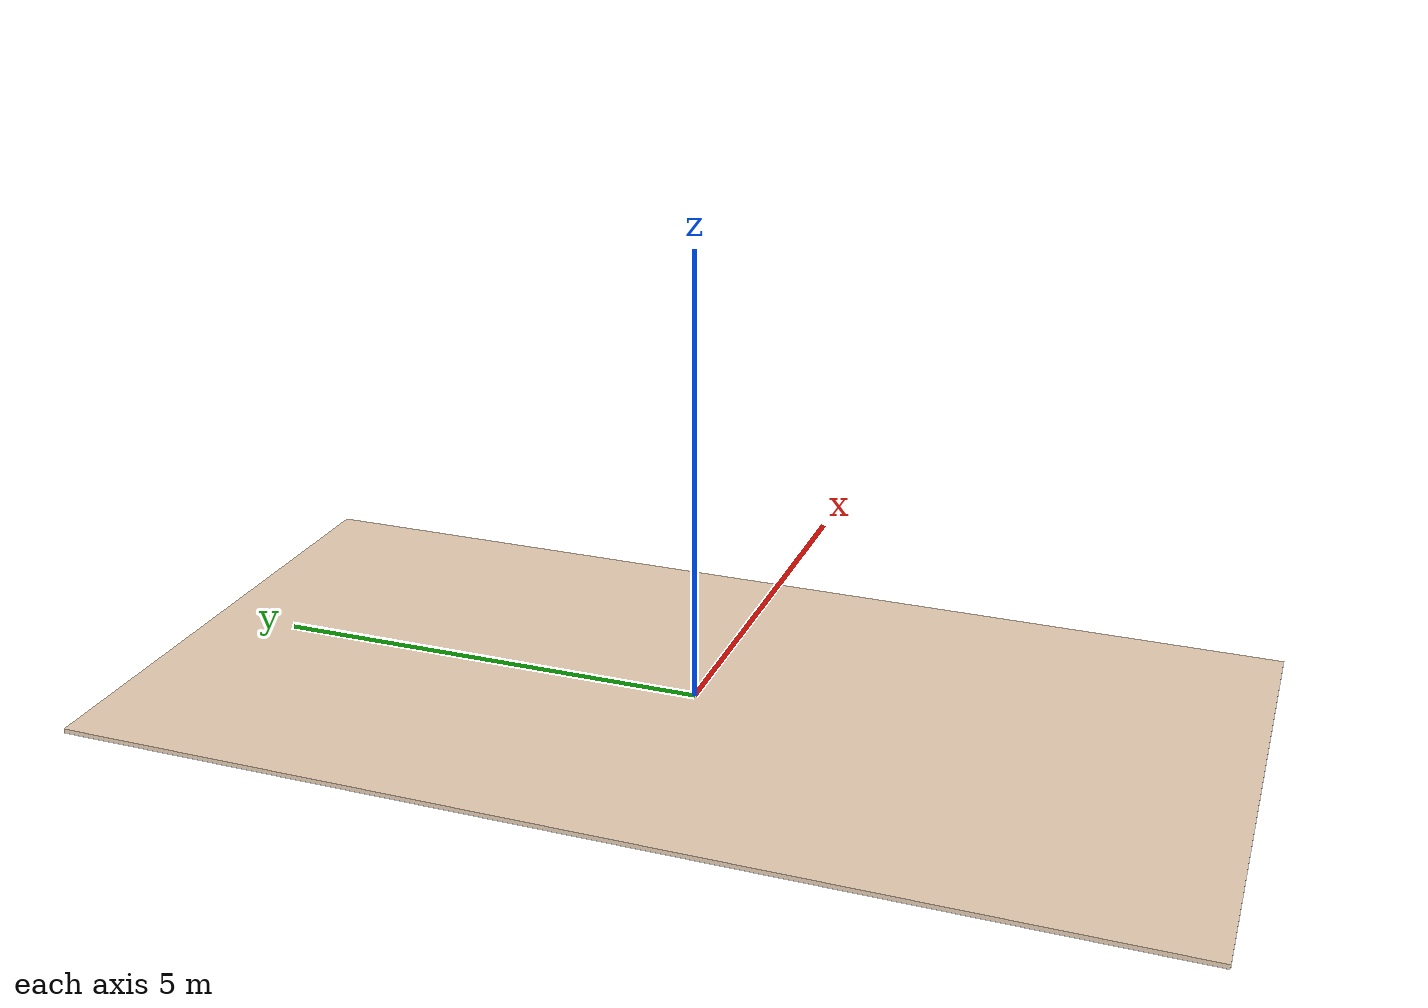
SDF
<?xml version="1.0"?>
<sdf version="1.7">
  <model name="platform">
    <link name="platform_link">
      <visual name="visual">
        <pose>0 0 0 0 0 0</pose>
        <geometry>
          <box>
            <size>6.0 12.0 0.05</size>
          </box>
        </geometry>
        <material>
          <diffuse>0.9 0.8 0.7 1.0</diffuse>
        </material>
      </visual>
      <collision name="collision">
        <pose>0 0 0 0 0 0</pose>
        <geometry>
          <box>
            <size>6.0 12.0 0.05</size>
          </box>
        </geometry>
        <drake:proximity_properties>
          <drake:compliant_hydroelastic />
          <drake:hydroelastic_modulus>1.0e8</drake:hydroelastic_modulus>
        </drake:proximity_properties>
      </collision>
    </link>
    <frame name="platform_center">
      <pose relative_to="platform_link">0 0 0.031 0 0 0</pose>
    </frame>
  </model>
</sdf>
